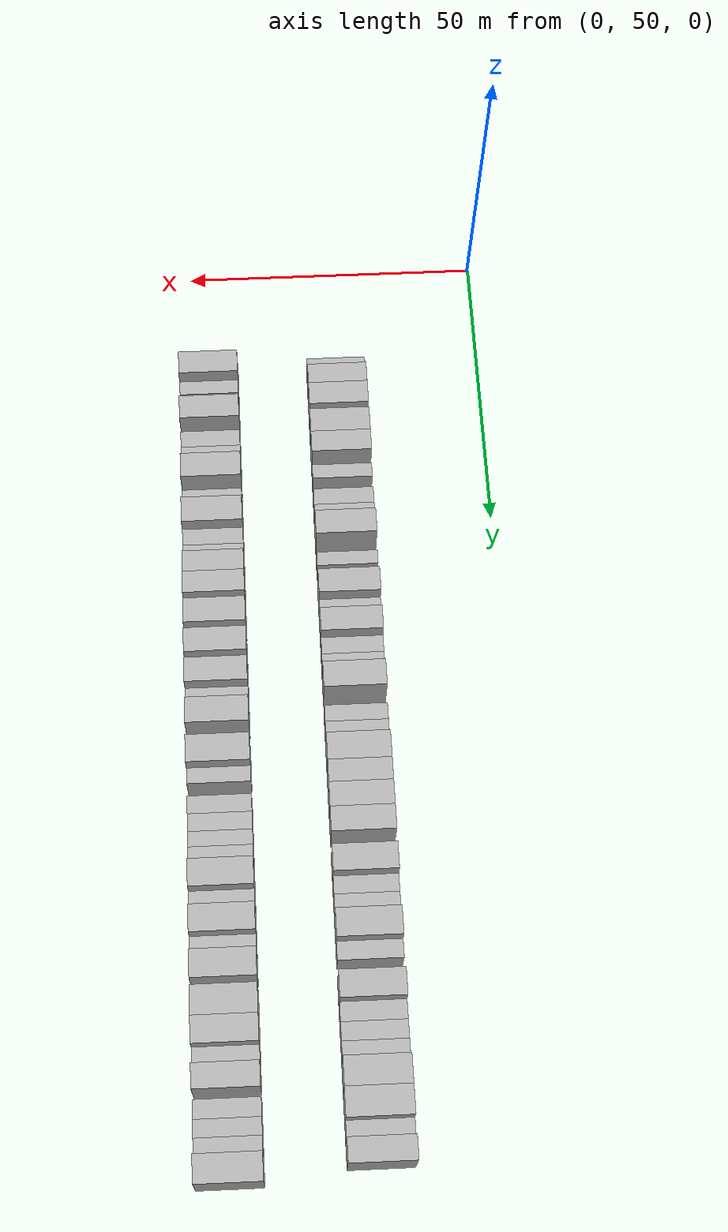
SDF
<sdf version="1.6">
 <world name="default">
  <model name="building_71">
   <static>1</static>
   <pose>25.0000 72.4095 0 0.000000 0.000000 0.000000</pose>
   <link name="link">
    <pose>0 0 3.00 0 0 0</pose>
    <collision name="collision"><geometry><box><size>10.0000 2.9262 6.0000</size></box></geometry></collision>
    <visual name="visual">
     <cast_shadows>0</cast_shadows>
     <geometry><box><size>10.0000 2.9262 6.0000</size></box></geometry>
     <material>
      <script>
       <uri>model://HANNAS_wall/materials/scripts</uri>
       <uri>model://HANNAS_wall/materials/textures</uri>
       <name>vrc/HANNAS_wall</name>
      </script>
     </material>
    </visual>
   </link>
  </model>
  <model name="building_72">
   <static>1</static>
   <pose>25.0000 75.6916 0 0.000000 0.000000 0.000000</pose>
   <link name="link">
    <pose>0 0 4.50 0 0 0</pose>
    <collision name="collision"><geometry><box><size>10.0000 3.6381 9.0000</size></box></geometry></collision>
    <visual name="visual">
     <cast_shadows>0</cast_shadows>
     <geometry><box><size>10.0000 3.6381 9.0000</size></box></geometry>
     <material>
      <script>
       <uri>model://HANNAS_wall/materials/scripts</uri>
       <uri>model://HANNAS_wall/materials/textures</uri>
       <name>vrc/HANNAS_wall</name>
      </script>
     </material>
    </visual>
   </link>
  </model>
  <model name="building_73">
   <static>1</static>
   <pose>25.0000 79.5745 0 0.000000 0.000000 0.000000</pose>
   <link name="link">
    <pose>0 0 4.50 0 0 0</pose>
    <collision name="collision"><geometry><box><size>10.0000 4.1278 9.0000</size></box></geometry></collision>
    <visual name="visual">
     <cast_shadows>0</cast_shadows>
     <geometry><box><size>10.0000 4.1278 9.0000</size></box></geometry>
     <material>
      <script>
       <uri>model://HANNAS_wall/materials/scripts</uri>
       <uri>model://HANNAS_wall/materials/textures</uri>
       <name>vrc/HANNAS_wall</name>
      </script>
     </material>
    </visual>
   </link>
  </model>
  <model name="building_74">
   <static>1</static>
   <pose>25.0000 84.8035 0 0.000000 0.000000 0.000000</pose>
   <link name="link">
    <pose>0 0 4.50 0 0 0</pose>
    <collision name="collision"><geometry><box><size>10.0000 4.3300 9.0000</size></box></geometry></collision>
    <visual name="visual">
     <cast_shadows>0</cast_shadows>
     <geometry><box><size>10.0000 4.3300 9.0000</size></box></geometry>
     <material>
      <script>
       <uri>model://HANNAS_wall/materials/scripts</uri>
       <uri>model://HANNAS_wall/materials/textures</uri>
       <name>vrc/HANNAS_wall</name>
      </script>
     </material>
    </visual>
   </link>
  </model>
  <model name="building_75">
   <static>1</static>
   <pose>25.0000 88.8725 0 0.000000 0.000000 0.000000</pose>
   <link name="link">
    <pose>0 0 4.50 0 0 0</pose>
    <collision name="collision"><geometry><box><size>10.0000 3.8081 9.0000</size></box></geometry></collision>
    <visual name="visual">
     <cast_shadows>0</cast_shadows>
     <geometry><box><size>10.0000 3.8081 9.0000</size></box></geometry>
     <material>
      <script>
       <uri>model://HANNAS_wall/materials/scripts</uri>
       <uri>model://HANNAS_wall/materials/textures</uri>
       <name>vrc/HANNAS_wall</name>
      </script>
     </material>
    </visual>
   </link>
  </model>
  <model name="building_76">
   <static>1</static>
   <pose>25.0000 93.0539 0 0.000000 0.000000 0.000000</pose>
   <link name="link">
    <pose>0 0 3.00 0 0 0</pose>
    <collision name="collision"><geometry><box><size>10.0000 2.5547 6.0000</size></box></geometry></collision>
    <visual name="visual">
     <cast_shadows>0</cast_shadows>
     <geometry><box><size>10.0000 2.5547 6.0000</size></box></geometry>
     <material>
      <script>
       <uri>model://HANNAS_wall/materials/scripts</uri>
       <uri>model://HANNAS_wall/materials/textures</uri>
       <name>vrc/HANNAS_wall</name>
      </script>
     </material>
    </visual>
   </link>
  </model>
  <model name="building_77">
   <static>1</static>
   <pose>25.0000 97.7965 0 0.000000 0.000000 0.000000</pose>
   <link name="link">
    <pose>0 0 3.00 0 0 0</pose>
    <collision name="collision"><geometry><box><size>10.0000 2.9305 6.0000</size></box></geometry></collision>
    <visual name="visual">
     <cast_shadows>0</cast_shadows>
     <geometry><box><size>10.0000 2.9305 6.0000</size></box></geometry>
     <material>
      <script>
       <uri>model://HANNAS_wall/materials/scripts</uri>
       <uri>model://HANNAS_wall/materials/textures</uri>
       <name>vrc/HANNAS_wall</name>
      </script>
     </material>
    </visual>
   </link>
  </model>
  <model name="building_78">
   <static>1</static>
   <pose>25.0000 100.5645 0 0.000000 0.000000 0.000000</pose>
   <link name="link">
    <pose>0 0 3.00 0 0 0</pose>
    <collision name="collision"><geometry><box><size>10.0000 2.6054 6.0000</size></box></geometry></collision>
    <visual name="visual">
     <cast_shadows>0</cast_shadows>
     <geometry><box><size>10.0000 2.6054 6.0000</size></box></geometry>
     <material>
      <script>
       <uri>model://HANNAS_wall/materials/scripts</uri>
       <uri>model://HANNAS_wall/materials/textures</uri>
       <name>vrc/HANNAS_wall</name>
      </script>
     </material>
    </visual>
   </link>
  </model>
  <model name="building_79">
   <static>1</static>
   <pose>25.0000 103.9760 0 0.000000 0.000000 0.000000</pose>
   <link name="link">
    <pose>0 0 4.50 0 0 0</pose>
    <collision name="collision"><geometry><box><size>10.0000 4.2176 9.0000</size></box></geometry></collision>
    <visual name="visual">
     <cast_shadows>0</cast_shadows>
     <geometry><box><size>10.0000 4.2176 9.0000</size></box></geometry>
     <material>
      <script>
       <uri>model://HANNAS_wall/materials/scripts</uri>
       <uri>model://HANNAS_wall/materials/textures</uri>
       <name>vrc/HANNAS_wall</name>
      </script>
     </material>
    </visual>
   </link>
  </model>
  <model name="building_80">
   <static>1</static>
   <pose>25.0000 109.2987 0 0.000000 0.000000 0.000000</pose>
   <link name="link">
    <pose>0 0 3.00 0 0 0</pose>
    <collision name="collision"><geometry><box><size>10.0000 2.4277 6.0000</size></box></geometry></collision>
    <visual name="visual">
     <cast_shadows>0</cast_shadows>
     <geometry><box><size>10.0000 2.4277 6.0000</size></box></geometry>
     <material>
      <script>
       <uri>model://HANNAS_wall/materials/scripts</uri>
       <uri>model://HANNAS_wall/materials/textures</uri>
       <name>vrc/HANNAS_wall</name>
      </script>
     </material>
    </visual>
   </link>
  </model>
  <model name="building_81">
   <static>1</static>
   <pose>25.0000 114.5746 0 0.000000 0.000000 0.000000</pose>
   <link name="link">
    <pose>0 0 4.50 0 0 0</pose>
    <collision name="collision"><geometry><box><size>10.0000 4.1242 9.0000</size></box></geometry></collision>
    <visual name="visual">
     <cast_shadows>0</cast_shadows>
     <geometry><box><size>10.0000 4.1242 9.0000</size></box></geometry>
     <material>
      <script>
       <uri>model://HANNAS_wall/materials/scripts</uri>
       <uri>model://HANNAS_wall/materials/textures</uri>
       <name>vrc/HANNAS_wall</name>
      </script>
     </material>
    </visual>
   </link>
  </model>
  <model name="building_82">
   <static>1</static>
   <pose>25.0000 117.9998 0 0.000000 0.000000 0.000000</pose>
   <link name="link">
    <pose>0 0 3.00 0 0 0</pose>
    <collision name="collision"><geometry><box><size>10.0000 2.7262 6.0000</size></box></geometry></collision>
    <visual name="visual">
     <cast_shadows>0</cast_shadows>
     <geometry><box><size>10.0000 2.7262 6.0000</size></box></geometry>
     <material>
      <script>
       <uri>model://HANNAS_wall/materials/scripts</uri>
       <uri>model://HANNAS_wall/materials/textures</uri>
       <name>vrc/HANNAS_wall</name>
      </script>
     </material>
    </visual>
   </link>
  </model>
  <model name="building_83">
   <static>1</static>
   <pose>25.0000 121.3579 0 0.000000 0.000000 0.000000</pose>
   <link name="link">
    <pose>0 0 4.50 0 0 0</pose>
    <collision name="collision"><geometry><box><size>10.0000 3.9899 9.0000</size></box></geometry></collision>
    <visual name="visual">
     <cast_shadows>0</cast_shadows>
     <geometry><box><size>10.0000 3.9899 9.0000</size></box></geometry>
     <material>
      <script>
       <uri>model://HANNAS_wall/materials/scripts</uri>
       <uri>model://HANNAS_wall/materials/textures</uri>
       <name>vrc/HANNAS_wall</name>
      </script>
     </material>
    </visual>
   </link>
  </model>
  <model name="building_84">
   <static>1</static>
   <pose>25.0000 124.7776 0 0.000000 0.000000 0.000000</pose>
   <link name="link">
    <pose>0 0 3.00 0 0 0</pose>
    <collision name="collision"><geometry><box><size>10.0000 2.8494 6.0000</size></box></geometry></collision>
    <visual name="visual">
     <cast_shadows>0</cast_shadows>
     <geometry><box><size>10.0000 2.8494 6.0000</size></box></geometry>
     <material>
      <script>
       <uri>model://HANNAS_wall/materials/scripts</uri>
       <uri>model://HANNAS_wall/materials/textures</uri>
       <name>vrc/HANNAS_wall</name>
      </script>
     </material>
    </visual>
   </link>
  </model>
  <model name="building_85">
   <static>1</static>
   <pose>25.0000 127.4439 0 0.000000 0.000000 0.000000</pose>
   <link name="link">
    <pose>0 0 3.00 0 0 0</pose>
    <collision name="collision"><geometry><box><size>10.0000 2.4832 6.0000</size></box></geometry></collision>
    <visual name="visual">
     <cast_shadows>0</cast_shadows>
     <geometry><box><size>10.0000 2.4832 6.0000</size></box></geometry>
     <material>
      <script>
       <uri>model://HANNAS_wall/materials/scripts</uri>
       <uri>model://HANNAS_wall/materials/textures</uri>
       <name>vrc/HANNAS_wall</name>
      </script>
     </material>
    </visual>
   </link>
  </model>
  <model name="building_86">
   <static>1</static>
   <pose>25.0000 130.8366 0 0.000000 0.000000 0.000000</pose>
   <link name="link">
    <pose>0 0 4.50 0 0 0</pose>
    <collision name="collision"><geometry><box><size>10.0000 4.3023 9.0000</size></box></geometry></collision>
    <visual name="visual">
     <cast_shadows>0</cast_shadows>
     <geometry><box><size>10.0000 4.3023 9.0000</size></box></geometry>
     <material>
      <script>
       <uri>model://HANNAS_wall/materials/scripts</uri>
       <uri>model://HANNAS_wall/materials/textures</uri>
       <name>vrc/HANNAS_wall</name>
      </script>
     </material>
    </visual>
   </link>
  </model>
  <model name="building_87">
   <static>1</static>
   <pose>25.0000 136.3557 0 0.000000 0.000000 0.000000</pose>
   <link name="link">
    <pose>0 0 3.00 0 0 0</pose>
    <collision name="collision"><geometry><box><size>10.0000 2.7359 6.0000</size></box></geometry></collision>
    <visual name="visual">
     <cast_shadows>0</cast_shadows>
     <geometry><box><size>10.0000 2.7359 6.0000</size></box></geometry>
     <material>
      <script>
       <uri>model://HANNAS_wall/materials/scripts</uri>
       <uri>model://HANNAS_wall/materials/textures</uri>
       <name>vrc/HANNAS_wall</name>
      </script>
     </material>
    </visual>
   </link>
  </model>
  <model name="building_88">
   <static>1</static>
   <pose>25.0000 139.1639 0 0.000000 0.000000 0.000000</pose>
   <link name="link">
    <pose>0 0 3.00 0 0 0</pose>
    <collision name="collision"><geometry><box><size>10.0000 2.8805 6.0000</size></box></geometry></collision>
    <visual name="visual">
     <cast_shadows>0</cast_shadows>
     <geometry><box><size>10.0000 2.8805 6.0000</size></box></geometry>
     <material>
      <script>
       <uri>model://HANNAS_wall/materials/scripts</uri>
       <uri>model://HANNAS_wall/materials/textures</uri>
       <name>vrc/HANNAS_wall</name>
      </script>
     </material>
    </visual>
   </link>
  </model>
  <model name="building_89">
   <static>1</static>
   <pose>25.0000 142.8288 0 0.000000 0.000000 0.000000</pose>
   <link name="link">
    <pose>0 0 4.50 0 0 0</pose>
    <collision name="collision"><geometry><box><size>10.0000 4.4494 9.0000</size></box></geometry></collision>
    <visual name="visual">
     <cast_shadows>0</cast_shadows>
     <geometry><box><size>10.0000 4.4494 9.0000</size></box></geometry>
     <material>
      <script>
       <uri>model://HANNAS_wall/materials/scripts</uri>
       <uri>model://HANNAS_wall/materials/textures</uri>
       <name>vrc/HANNAS_wall</name>
      </script>
     </material>
    </visual>
   </link>
  </model>
  <model name="building_90">
   <static>1</static>
   <pose>25.0000 146.8652 0 0.000000 0.000000 0.000000</pose>
   <link name="link">
    <pose>0 0 4.50 0 0 0</pose>
    <collision name="collision"><geometry><box><size>10.0000 3.6233 9.0000</size></box></geometry></collision>
    <visual name="visual">
     <cast_shadows>0</cast_shadows>
     <geometry><box><size>10.0000 3.6233 9.0000</size></box></geometry>
     <material>
      <script>
       <uri>model://HANNAS_wall/materials/scripts</uri>
       <uri>model://HANNAS_wall/materials/textures</uri>
       <name>vrc/HANNAS_wall</name>
      </script>
     </material>
    </visual>
   </link>
  </model>
  <model name="building_91">
   <static>1</static>
   <pose>25.0000 150.6443 0 0.000000 0.000000 0.000000</pose>
   <link name="link">
    <pose>0 0 4.50 0 0 0</pose>
    <collision name="collision"><geometry><box><size>10.0000 3.9351 9.0000</size></box></geometry></collision>
    <visual name="visual">
     <cast_shadows>0</cast_shadows>
     <geometry><box><size>10.0000 3.9351 9.0000</size></box></geometry>
     <material>
      <script>
       <uri>model://HANNAS_wall/materials/scripts</uri>
       <uri>model://HANNAS_wall/materials/textures</uri>
       <name>vrc/HANNAS_wall</name>
      </script>
     </material>
    </visual>
   </link>
  </model>
  <model name="building_92">
   <static>1</static>
   <pose>25.0000 154.5795 0 0.000000 0.000000 0.000000</pose>
   <link name="link">
    <pose>0 0 4.50 0 0 0</pose>
    <collision name="collision"><geometry><box><size>10.0000 3.9353 9.0000</size></box></geometry></collision>
    <visual name="visual">
     <cast_shadows>0</cast_shadows>
     <geometry><box><size>10.0000 3.9353 9.0000</size></box></geometry>
     <material>
      <script>
       <uri>model://HANNAS_wall/materials/scripts</uri>
       <uri>model://HANNAS_wall/materials/textures</uri>
       <name>vrc/HANNAS_wall</name>
      </script>
     </material>
    </visual>
   </link>
  </model>
  <model name="building_93">
   <static>1</static>
   <pose>25.0000 160.6480 0 0.000000 0.000000 0.000000</pose>
   <link name="link">
    <pose>0 0 4.50 0 0 0</pose>
    <collision name="collision"><geometry><box><size>10.0000 4.2016 9.0000</size></box></geometry></collision>
    <visual name="visual">
     <cast_shadows>0</cast_shadows>
     <geometry><box><size>10.0000 4.2016 9.0000</size></box></geometry>
     <material>
      <script>
       <uri>model://HANNAS_wall/materials/scripts</uri>
       <uri>model://HANNAS_wall/materials/textures</uri>
       <name>vrc/HANNAS_wall</name>
      </script>
     </material>
    </visual>
   </link>
  </model>
  <model name="building_94">
   <static>1</static>
   <pose>25.0000 164.1488 0 0.000000 0.000000 0.000000</pose>
   <link name="link">
    <pose>0 0 3.00 0 0 0</pose>
    <collision name="collision"><geometry><box><size>10.0000 2.8002 6.0000</size></box></geometry></collision>
    <visual name="visual">
     <cast_shadows>0</cast_shadows>
     <geometry><box><size>10.0000 2.8002 6.0000</size></box></geometry>
     <material>
      <script>
       <uri>model://HANNAS_wall/materials/scripts</uri>
       <uri>model://HANNAS_wall/materials/textures</uri>
       <name>vrc/HANNAS_wall</name>
      </script>
     </material>
    </visual>
   </link>
  </model>
  <model name="building_95">
   <static>1</static>
   <pose>25.0000 166.9760 0 0.000000 0.000000 0.000000</pose>
   <link name="link">
    <pose>0 0 3.00 0 0 0</pose>
    <collision name="collision"><geometry><box><size>10.0000 2.8540 6.0000</size></box></geometry></collision>
    <visual name="visual">
     <cast_shadows>0</cast_shadows>
     <geometry><box><size>10.0000 2.8540 6.0000</size></box></geometry>
     <material>
      <script>
       <uri>model://HANNAS_wall/materials/scripts</uri>
       <uri>model://HANNAS_wall/materials/textures</uri>
       <name>vrc/HANNAS_wall</name>
      </script>
     </material>
    </visual>
   </link>
  </model>
  <model name="building_96">
   <static>1</static>
   <pose>25.0000 170.5918 0 0.000000 0.000000 0.000000</pose>
   <link name="link">
    <pose>0 0 4.50 0 0 0</pose>
    <collision name="collision"><geometry><box><size>10.0000 4.3777 9.0000</size></box></geometry></collision>
    <visual name="visual">
     <cast_shadows>0</cast_shadows>
     <geometry><box><size>10.0000 4.3777 9.0000</size></box></geometry>
     <material>
      <script>
       <uri>model://HANNAS_wall/materials/scripts</uri>
       <uri>model://HANNAS_wall/materials/textures</uri>
       <name>vrc/HANNAS_wall</name>
      </script>
     </material>
    </visual>
   </link>
  </model>
  <model name="building_97">
   <static>1</static>
   <pose>25.0000 174.2160 0 0.000000 0.000000 0.000000</pose>
   <link name="link">
    <pose>0 0 3.00 0 0 0</pose>
    <collision name="collision"><geometry><box><size>10.0000 2.8707 6.0000</size></box></geometry></collision>
    <visual name="visual">
     <cast_shadows>0</cast_shadows>
     <geometry><box><size>10.0000 2.8707 6.0000</size></box></geometry>
     <material>
      <script>
       <uri>model://HANNAS_wall/materials/scripts</uri>
       <uri>model://HANNAS_wall/materials/textures</uri>
       <name>vrc/HANNAS_wall</name>
      </script>
     </material>
    </visual>
   </link>
  </model>
  <model name="building_98">
   <static>1</static>
   <pose>25.0000 179.7209 0 0.000000 0.000000 0.000000</pose>
   <link name="link">
    <pose>0 0 4.50 0 0 0</pose>
    <collision name="collision"><geometry><box><size>10.0000 4.1390 9.0000</size></box></geometry></collision>
    <visual name="visual">
     <cast_shadows>0</cast_shadows>
     <geometry><box><size>10.0000 4.1390 9.0000</size></box></geometry>
     <material>
      <script>
       <uri>model://HANNAS_wall/materials/scripts</uri>
       <uri>model://HANNAS_wall/materials/textures</uri>
       <name>vrc/HANNAS_wall</name>
      </script>
     </material>
    </visual>
   </link>
  </model>
  <model name="building_99">
   <static>1</static>
   <pose>25.0000 183.2602 0 0.000000 0.000000 0.000000</pose>
   <link name="link">
    <pose>0 0 3.00 0 0 0</pose>
    <collision name="collision"><geometry><box><size>10.0000 2.9398 6.0000</size></box></geometry></collision>
    <visual name="visual">
     <cast_shadows>0</cast_shadows>
     <geometry><box><size>10.0000 2.9398 6.0000</size></box></geometry>
     <material>
      <script>
       <uri>model://HANNAS_wall/materials/scripts</uri>
       <uri>model://HANNAS_wall/materials/textures</uri>
       <name>vrc/HANNAS_wall</name>
      </script>
     </material>
    </visual>
   </link>
  </model>
  <model name="building_100">
   <static>1</static>
   <pose>25.0000 186.1321 0 0.000000 0.000000 0.000000</pose>
   <link name="link">
    <pose>0 0 3.00 0 0 0</pose>
    <collision name="collision"><geometry><box><size>10.0000 2.8039 6.0000</size></box></geometry></collision>
    <visual name="visual">
     <cast_shadows>0</cast_shadows>
     <geometry><box><size>10.0000 2.8039 6.0000</size></box></geometry>
     <material>
      <script>
       <uri>model://HANNAS_wall/materials/scripts</uri>
       <uri>model://HANNAS_wall/materials/textures</uri>
       <name>vrc/HANNAS_wall</name>
      </script>
     </material>
    </visual>
   </link>
  </model>
  <model name="building_101">
   <static>1</static>
   <pose>25.0000 188.8167 0 0.000000 0.000000 0.000000</pose>
   <link name="link">
    <pose>0 0 3.00 0 0 0</pose>
    <collision name="collision"><geometry><box><size>10.0000 2.5652 6.0000</size></box></geometry></collision>
    <visual name="visual">
     <cast_shadows>0</cast_shadows>
     <geometry><box><size>10.0000 2.5652 6.0000</size></box></geometry>
     <material>
      <script>
       <uri>model://HANNAS_wall/materials/scripts</uri>
       <uri>model://HANNAS_wall/materials/textures</uri>
       <name>vrc/HANNAS_wall</name>
      </script>
     </material>
    </visual>
   </link>
  </model>
  <model name="building_102">
   <static>1</static>
   <pose>25.0000 192.2712 0 0.000000 0.000000 0.000000</pose>
   <link name="link">
    <pose>0 0 4.50 0 0 0</pose>
    <collision name="collision"><geometry><box><size>10.0000 4.3439 9.0000</size></box></geometry></collision>
    <visual name="visual">
     <cast_shadows>0</cast_shadows>
     <geometry><box><size>10.0000 4.3439 9.0000</size></box></geometry>
     <material>
      <script>
       <uri>model://HANNAS_wall/materials/scripts</uri>
       <uri>model://HANNAS_wall/materials/textures</uri>
       <name>vrc/HANNAS_wall</name>
      </script>
     </material>
    </visual>
   </link>
  </model>
  <model name="building_103">
   <static>1</static>
   <pose>25.0000 196.6186 0 0.000000 0.000000 0.000000</pose>
   <link name="link">
    <pose>0 0 4.50 0 0 0</pose>
    <collision name="collision"><geometry><box><size>10.0000 4.3509 9.0000</size></box></geometry></collision>
    <visual name="visual">
     <cast_shadows>0</cast_shadows>
     <geometry><box><size>10.0000 4.3509 9.0000</size></box></geometry>
     <material>
      <script>
       <uri>model://HANNAS_wall/materials/scripts</uri>
       <uri>model://HANNAS_wall/materials/textures</uri>
       <name>vrc/HANNAS_wall</name>
      </script>
     </material>
    </visual>
   </link>
  </model>
  <model name="building_104">
   <static>1</static>
   <pose>25.0000 200.1310 0 0.000000 0.000000 0.000000</pose>
   <link name="link">
    <pose>0 0 3.00 0 0 0</pose>
    <collision name="collision"><geometry><box><size>10.0000 2.6739 6.0000</size></box></geometry></collision>
    <visual name="visual">
     <cast_shadows>0</cast_shadows>
     <geometry><box><size>10.0000 2.6739 6.0000</size></box></geometry>
     <material>
      <script>
       <uri>model://HANNAS_wall/materials/scripts</uri>
       <uri>model://HANNAS_wall/materials/textures</uri>
       <name>vrc/HANNAS_wall</name>
      </script>
     </material>
    </visual>
   </link>
  </model>
  <model name="building_105">
   <static>1</static>
   <pose>25.0000 203.2763 0 0.000000 0.000000 0.000000</pose>
   <link name="link">
    <pose>0 0 4.50 0 0 0</pose>
    <collision name="collision"><geometry><box><size>10.0000 3.6168 9.0000</size></box></geometry></collision>
    <visual name="visual">
     <cast_shadows>0</cast_shadows>
     <geometry><box><size>10.0000 3.6168 9.0000</size></box></geometry>
     <material>
      <script>
       <uri>model://HANNAS_wall/materials/scripts</uri>
       <uri>model://HANNAS_wall/materials/textures</uri>
       <name>vrc/HANNAS_wall</name>
      </script>
     </material>
    </visual>
   </link>
  </model>
  <model name="building_178">
   <static>1</static>
   <pose>47.0000 72.5475 0 0.000000 0.000000 0.000000</pose>
   <link name="link">
    <pose>0 0 4.50 0 0 0</pose>
    <collision name="collision"><geometry><box><size>10.0000 4.1582 9.0000</size></box></geometry></collision>
    <visual name="visual">
     <cast_shadows>0</cast_shadows>
     <geometry><box><size>10.0000 4.1582 9.0000</size></box></geometry>
     <material>
      <script>
       <uri>model://HANNAS_wall/materials/scripts</uri>
       <uri>model://HANNAS_wall/materials/textures</uri>
       <name>vrc/HANNAS_wall</name>
      </script>
     </material>
    </visual>
   </link>
  </model>
  <model name="building_179">
   <static>1</static>
   <pose>47.0000 75.9032 0 0.000000 0.000000 0.000000</pose>
   <link name="link">
    <pose>0 0 3.00 0 0 0</pose>
    <collision name="collision"><geometry><box><size>10.0000 2.5532 6.0000</size></box></geometry></collision>
    <visual name="visual">
     <cast_shadows>0</cast_shadows>
     <geometry><box><size>10.0000 2.5532 6.0000</size></box></geometry>
     <material>
      <script>
       <uri>model://HANNAS_wall/materials/scripts</uri>
       <uri>model://HANNAS_wall/materials/textures</uri>
       <name>vrc/HANNAS_wall</name>
      </script>
     </material>
    </visual>
   </link>
  </model>
  <model name="building_180">
   <static>1</static>
   <pose>47.0000 81.3061 0 0.000000 0.000000 0.000000</pose>
   <link name="link">
    <pose>0 0 4.50 0 0 0</pose>
    <collision name="collision"><geometry><box><size>10.0000 4.2527 9.0000</size></box></geometry></collision>
    <visual name="visual">
     <cast_shadows>0</cast_shadows>
     <geometry><box><size>10.0000 4.2527 9.0000</size></box></geometry>
     <material>
      <script>
       <uri>model://HANNAS_wall/materials/scripts</uri>
       <uri>model://HANNAS_wall/materials/textures</uri>
       <name>vrc/HANNAS_wall</name>
      </script>
     </material>
    </visual>
   </link>
  </model>
  <model name="building_181">
   <static>1</static>
   <pose>47.0000 85.9290 0 0.000000 0.000000 0.000000</pose>
   <link name="link">
    <pose>0 0 3.00 0 0 0</pose>
    <collision name="collision"><geometry><box><size>10.0000 2.9931 6.0000</size></box></geometry></collision>
    <visual name="visual">
     <cast_shadows>0</cast_shadows>
     <geometry><box><size>10.0000 2.9931 6.0000</size></box></geometry>
     <material>
      <script>
       <uri>model://HANNAS_wall/materials/scripts</uri>
       <uri>model://HANNAS_wall/materials/textures</uri>
       <name>vrc/HANNAS_wall</name>
      </script>
     </material>
    </visual>
   </link>
  </model>
  <model name="building_182">
   <static>1</static>
   <pose>47.0000 88.8432 0 0.000000 0.000000 0.000000</pose>
   <link name="link">
    <pose>0 0 3.00 0 0 0</pose>
    <collision name="collision"><geometry><box><size>10.0000 2.8354 6.0000</size></box></geometry></collision>
    <visual name="visual">
     <cast_shadows>0</cast_shadows>
     <geometry><box><size>10.0000 2.8354 6.0000</size></box></geometry>
     <material>
      <script>
       <uri>model://HANNAS_wall/materials/scripts</uri>
       <uri>model://HANNAS_wall/materials/textures</uri>
       <name>vrc/HANNAS_wall</name>
      </script>
     </material>
    </visual>
   </link>
  </model>
  <model name="building_183">
   <static>1</static>
   <pose>47.0000 92.4474 0 0.000000 0.000000 0.000000</pose>
   <link name="link">
    <pose>0 0 4.50 0 0 0</pose>
    <collision name="collision"><geometry><box><size>10.0000 4.3729 9.0000</size></box></geometry></collision>
    <visual name="visual">
     <cast_shadows>0</cast_shadows>
     <geometry><box><size>10.0000 4.3729 9.0000</size></box></geometry>
     <material>
      <script>
       <uri>model://HANNAS_wall/materials/scripts</uri>
       <uri>model://HANNAS_wall/materials/textures</uri>
       <name>vrc/HANNAS_wall</name>
      </script>
     </material>
    </visual>
   </link>
  </model>
  <model name="building_184">
   <static>1</static>
   <pose>47.0000 97.0595 0 0.000000 0.000000 0.000000</pose>
   <link name="link">
    <pose>0 0 3.00 0 0 0</pose>
    <collision name="collision"><geometry><box><size>10.0000 2.8513 6.0000</size></box></geometry></collision>
    <visual name="visual">
     <cast_shadows>0</cast_shadows>
     <geometry><box><size>10.0000 2.8513 6.0000</size></box></geometry>
     <material>
      <script>
       <uri>model://HANNAS_wall/materials/scripts</uri>
       <uri>model://HANNAS_wall/materials/textures</uri>
       <name>vrc/HANNAS_wall</name>
      </script>
     </material>
    </visual>
   </link>
  </model>
  <model name="building_185">
   <static>1</static>
   <pose>47.0000 100.7229 0 0.000000 0.000000 0.000000</pose>
   <link name="link">
    <pose>0 0 4.50 0 0 0</pose>
    <collision name="collision"><geometry><box><size>10.0000 4.4754 9.0000</size></box></geometry></collision>
    <visual name="visual">
     <cast_shadows>0</cast_shadows>
     <geometry><box><size>10.0000 4.4754 9.0000</size></box></geometry>
     <material>
      <script>
       <uri>model://HANNAS_wall/materials/scripts</uri>
       <uri>model://HANNAS_wall/materials/textures</uri>
       <name>vrc/HANNAS_wall</name>
      </script>
     </material>
    </visual>
   </link>
  </model>
  <model name="building_186">
   <static>1</static>
   <pose>47.0000 104.4157 0 0.000000 0.000000 0.000000</pose>
   <link name="link">
    <pose>0 0 3.00 0 0 0</pose>
    <collision name="collision"><geometry><box><size>10.0000 2.9102 6.0000</size></box></geometry></collision>
    <visual name="visual">
     <cast_shadows>0</cast_shadows>
     <geometry><box><size>10.0000 2.9102 6.0000</size></box></geometry>
     <material>
      <script>
       <uri>model://HANNAS_wall/materials/scripts</uri>
       <uri>model://HANNAS_wall/materials/textures</uri>
       <name>vrc/HANNAS_wall</name>
      </script>
     </material>
    </visual>
   </link>
  </model>
  <model name="building_187">
   <static>1</static>
   <pose>47.0000 107.0974 0 0.000000 0.000000 0.000000</pose>
   <link name="link">
    <pose>0 0 3.00 0 0 0</pose>
    <collision name="collision"><geometry><box><size>10.0000 2.4532 6.0000</size></box></geometry></collision>
    <visual name="visual">
     <cast_shadows>0</cast_shadows>
     <geometry><box><size>10.0000 2.4532 6.0000</size></box></geometry>
     <material>
      <script>
       <uri>model://HANNAS_wall/materials/scripts</uri>
       <uri>model://HANNAS_wall/materials/textures</uri>
       <name>vrc/HANNAS_wall</name>
      </script>
     </material>
    </visual>
   </link>
  </model>
  <model name="building_188">
   <static>1</static>
   <pose>47.0000 110.1514 0 0.000000 0.000000 0.000000</pose>
   <link name="link">
    <pose>0 0 4.50 0 0 0</pose>
    <collision name="collision"><geometry><box><size>10.0000 3.6549 9.0000</size></box></geometry></collision>
    <visual name="visual">
     <cast_shadows>0</cast_shadows>
     <geometry><box><size>10.0000 3.6549 9.0000</size></box></geometry>
     <material>
      <script>
       <uri>model://HANNAS_wall/materials/scripts</uri>
       <uri>model://HANNAS_wall/materials/textures</uri>
       <name>vrc/HANNAS_wall</name>
      </script>
     </material>
    </visual>
   </link>
  </model>
  <model name="building_189">
   <static>1</static>
   <pose>47.0000 113.8648 0 0.000000 0.000000 0.000000</pose>
   <link name="link">
    <pose>0 0 4.50 0 0 0</pose>
    <collision name="collision"><geometry><box><size>10.0000 3.7719 9.0000</size></box></geometry></collision>
    <visual name="visual">
     <cast_shadows>0</cast_shadows>
     <geometry><box><size>10.0000 3.7719 9.0000</size></box></geometry>
     <material>
      <script>
       <uri>model://HANNAS_wall/materials/scripts</uri>
       <uri>model://HANNAS_wall/materials/textures</uri>
       <name>vrc/HANNAS_wall</name>
      </script>
     </material>
    </visual>
   </link>
  </model>
  <model name="building_190">
   <static>1</static>
   <pose>47.0000 118.8554 0 0.000000 0.000000 0.000000</pose>
   <link name="link">
    <pose>0 0 4.50 0 0 0</pose>
    <collision name="collision"><geometry><box><size>10.0000 4.2092 9.0000</size></box></geometry></collision>
    <visual name="visual">
     <cast_shadows>0</cast_shadows>
     <geometry><box><size>10.0000 4.2092 9.0000</size></box></geometry>
     <material>
      <script>
       <uri>model://HANNAS_wall/materials/scripts</uri>
       <uri>model://HANNAS_wall/materials/textures</uri>
       <name>vrc/HANNAS_wall</name>
      </script>
     </material>
    </visual>
   </link>
  </model>
  <model name="building_191">
   <static>1</static>
   <pose>47.0000 124.0169 0 0.000000 0.000000 0.000000</pose>
   <link name="link">
    <pose>0 0 4.50 0 0 0</pose>
    <collision name="collision"><geometry><box><size>10.0000 4.1139 9.0000</size></box></geometry></collision>
    <visual name="visual">
     <cast_shadows>0</cast_shadows>
     <geometry><box><size>10.0000 4.1139 9.0000</size></box></geometry>
     <material>
      <script>
       <uri>model://HANNAS_wall/materials/scripts</uri>
       <uri>model://HANNAS_wall/materials/textures</uri>
       <name>vrc/HANNAS_wall</name>
      </script>
     </material>
    </visual>
   </link>
  </model>
  <model name="building_192">
   <static>1</static>
   <pose>47.0000 129.1223 0 0.000000 0.000000 0.000000</pose>
   <link name="link">
    <pose>0 0 4.50 0 0 0</pose>
    <collision name="collision"><geometry><box><size>10.0000 4.0970 9.0000</size></box></geometry></collision>
    <visual name="visual">
     <cast_shadows>0</cast_shadows>
     <geometry><box><size>10.0000 4.0970 9.0000</size></box></geometry>
     <material>
      <script>
       <uri>model://HANNAS_wall/materials/scripts</uri>
       <uri>model://HANNAS_wall/materials/textures</uri>
       <name>vrc/HANNAS_wall</name>
      </script>
     </material>
    </visual>
   </link>
  </model>
  <model name="building_193">
   <static>1</static>
   <pose>47.0000 132.4856 0 0.000000 0.000000 0.000000</pose>
   <link name="link">
    <pose>0 0 3.00 0 0 0</pose>
    <collision name="collision"><geometry><box><size>10.0000 2.6296 6.0000</size></box></geometry></collision>
    <visual name="visual">
     <cast_shadows>0</cast_shadows>
     <geometry><box><size>10.0000 2.6296 6.0000</size></box></geometry>
     <material>
      <script>
       <uri>model://HANNAS_wall/materials/scripts</uri>
       <uri>model://HANNAS_wall/materials/textures</uri>
       <name>vrc/HANNAS_wall</name>
      </script>
     </material>
    </visual>
   </link>
  </model>
  <model name="building_194">
   <static>1</static>
   <pose>47.0000 135.9206 0 0.000000 0.000000 0.000000</pose>
   <link name="link">
    <pose>0 0 4.50 0 0 0</pose>
    <collision name="collision"><geometry><box><size>10.0000 4.2405 9.0000</size></box></geometry></collision>
    <visual name="visual">
     <cast_shadows>0</cast_shadows>
     <geometry><box><size>10.0000 4.2405 9.0000</size></box></geometry>
     <material>
      <script>
       <uri>model://HANNAS_wall/materials/scripts</uri>
       <uri>model://HANNAS_wall/materials/textures</uri>
       <name>vrc/HANNAS_wall</name>
      </script>
     </material>
    </visual>
   </link>
  </model>
  <model name="building_195">
   <static>1</static>
   <pose>47.0000 142.2796 0 0.000000 0.000000 0.000000</pose>
   <link name="link">
    <pose>0 0 4.50 0 0 0</pose>
    <collision name="collision"><geometry><box><size>10.0000 4.4774 9.0000</size></box></geometry></collision>
    <visual name="visual">
     <cast_shadows>0</cast_shadows>
     <geometry><box><size>10.0000 4.4774 9.0000</size></box></geometry>
     <material>
      <script>
       <uri>model://HANNAS_wall/materials/scripts</uri>
       <uri>model://HANNAS_wall/materials/textures</uri>
       <name>vrc/HANNAS_wall</name>
      </script>
     </material>
    </visual>
   </link>
  </model>
  <model name="building_196">
   <static>1</static>
   <pose>47.0000 145.7974 0 0.000000 0.000000 0.000000</pose>
   <link name="link">
    <pose>0 0 3.00 0 0 0</pose>
    <collision name="collision"><geometry><box><size>10.0000 2.5583 6.0000</size></box></geometry></collision>
    <visual name="visual">
     <cast_shadows>0</cast_shadows>
     <geometry><box><size>10.0000 2.5583 6.0000</size></box></geometry>
     <material>
      <script>
       <uri>model://HANNAS_wall/materials/scripts</uri>
       <uri>model://HANNAS_wall/materials/textures</uri>
       <name>vrc/HANNAS_wall</name>
      </script>
     </material>
    </visual>
   </link>
  </model>
  <model name="building_197">
   <static>1</static>
   <pose>47.0000 150.5109 0 0.000000 0.000000 0.000000</pose>
   <link name="link">
    <pose>0 0 3.00 0 0 0</pose>
    <collision name="collision"><geometry><box><size>10.0000 2.8687 6.0000</size></box></geometry></collision>
    <visual name="visual">
     <cast_shadows>0</cast_shadows>
     <geometry><box><size>10.0000 2.8687 6.0000</size></box></geometry>
     <material>
      <script>
       <uri>model://HANNAS_wall/materials/scripts</uri>
       <uri>model://HANNAS_wall/materials/textures</uri>
       <name>vrc/HANNAS_wall</name>
      </script>
     </material>
    </visual>
   </link>
  </model>
  <model name="building_198">
   <static>1</static>
   <pose>47.0000 153.3639 0 0.000000 0.000000 0.000000</pose>
   <link name="link">
    <pose>0 0 3.00 0 0 0</pose>
    <collision name="collision"><geometry><box><size>10.0000 2.8373 6.0000</size></box></geometry></collision>
    <visual name="visual">
     <cast_shadows>0</cast_shadows>
     <geometry><box><size>10.0000 2.8373 6.0000</size></box></geometry>
     <material>
      <script>
       <uri>model://HANNAS_wall/materials/scripts</uri>
       <uri>model://HANNAS_wall/materials/textures</uri>
       <name>vrc/HANNAS_wall</name>
      </script>
     </material>
    </visual>
   </link>
  </model>
  <model name="building_199">
   <static>1</static>
   <pose>47.0000 156.0045 0 0.000000 0.000000 0.000000</pose>
   <link name="link">
    <pose>0 0 3.00 0 0 0</pose>
    <collision name="collision"><geometry><box><size>10.0000 2.4439 6.0000</size></box></geometry></collision>
    <visual name="visual">
     <cast_shadows>0</cast_shadows>
     <geometry><box><size>10.0000 2.4439 6.0000</size></box></geometry>
     <material>
      <script>
       <uri>model://HANNAS_wall/materials/scripts</uri>
       <uri>model://HANNAS_wall/materials/textures</uri>
       <name>vrc/HANNAS_wall</name>
      </script>
     </material>
    </visual>
   </link>
  </model>
  <model name="building_200">
   <static>1</static>
   <pose>47.0000 158.5562 0 0.000000 0.000000 0.000000</pose>
   <link name="link">
    <pose>0 0 3.00 0 0 0</pose>
    <collision name="collision"><geometry><box><size>10.0000 2.6594 6.0000</size></box></geometry></collision>
    <visual name="visual">
     <cast_shadows>0</cast_shadows>
     <geometry><box><size>10.0000 2.6594 6.0000</size></box></geometry>
     <material>
      <script>
       <uri>model://HANNAS_wall/materials/scripts</uri>
       <uri>model://HANNAS_wall/materials/textures</uri>
       <name>vrc/HANNAS_wall</name>
      </script>
     </material>
    </visual>
   </link>
  </model>
  <model name="building_201">
   <static>1</static>
   <pose>47.0000 162.0296 0 0.000000 0.000000 0.000000</pose>
   <link name="link">
    <pose>0 0 4.50 0 0 0</pose>
    <collision name="collision"><geometry><box><size>10.0000 4.2873 9.0000</size></box></geometry></collision>
    <visual name="visual">
     <cast_shadows>0</cast_shadows>
     <geometry><box><size>10.0000 4.2873 9.0000</size></box></geometry>
     <material>
      <script>
       <uri>model://HANNAS_wall/materials/scripts</uri>
       <uri>model://HANNAS_wall/materials/textures</uri>
       <name>vrc/HANNAS_wall</name>
      </script>
     </material>
    </visual>
   </link>
  </model>
  <model name="building_202">
   <static>1</static>
   <pose>47.0000 165.5286 0 0.000000 0.000000 0.000000</pose>
   <link name="link">
    <pose>0 0 3.00 0 0 0</pose>
    <collision name="collision"><geometry><box><size>10.0000 2.7107 6.0000</size></box></geometry></collision>
    <visual name="visual">
     <cast_shadows>0</cast_shadows>
     <geometry><box><size>10.0000 2.7107 6.0000</size></box></geometry>
     <material>
      <script>
       <uri>model://HANNAS_wall/materials/scripts</uri>
       <uri>model://HANNAS_wall/materials/textures</uri>
       <name>vrc/HANNAS_wall</name>
      </script>
     </material>
    </visual>
   </link>
  </model>
  <model name="building_203">
   <static>1</static>
   <pose>47.0000 168.9895 0 0.000000 0.000000 0.000000</pose>
   <link name="link">
    <pose>0 0 4.50 0 0 0</pose>
    <collision name="collision"><geometry><box><size>10.0000 4.2110 9.0000</size></box></geometry></collision>
    <visual name="visual">
     <cast_shadows>0</cast_shadows>
     <geometry><box><size>10.0000 4.2110 9.0000</size></box></geometry>
     <material>
      <script>
       <uri>model://HANNAS_wall/materials/scripts</uri>
       <uri>model://HANNAS_wall/materials/textures</uri>
       <name>vrc/HANNAS_wall</name>
      </script>
     </material>
    </visual>
   </link>
  </model>
  <model name="building_204">
   <static>1</static>
   <pose>47.0000 172.3645 0 0.000000 0.000000 0.000000</pose>
   <link name="link">
    <pose>0 0 3.00 0 0 0</pose>
    <collision name="collision"><geometry><box><size>10.0000 2.5391 6.0000</size></box></geometry></collision>
    <visual name="visual">
     <cast_shadows>0</cast_shadows>
     <geometry><box><size>10.0000 2.5391 6.0000</size></box></geometry>
     <material>
      <script>
       <uri>model://HANNAS_wall/materials/scripts</uri>
       <uri>model://HANNAS_wall/materials/textures</uri>
       <name>vrc/HANNAS_wall</name>
      </script>
     </material>
    </visual>
   </link>
  </model>
  <model name="building_205">
   <static>1</static>
   <pose>47.0000 175.7745 0 0.000000 0.000000 0.000000</pose>
   <link name="link">
    <pose>0 0 4.50 0 0 0</pose>
    <collision name="collision"><geometry><box><size>10.0000 4.2810 9.0000</size></box></geometry></collision>
    <visual name="visual">
     <cast_shadows>0</cast_shadows>
     <geometry><box><size>10.0000 4.2810 9.0000</size></box></geometry>
     <material>
      <script>
       <uri>model://HANNAS_wall/materials/scripts</uri>
       <uri>model://HANNAS_wall/materials/textures</uri>
       <name>vrc/HANNAS_wall</name>
      </script>
     </material>
    </visual>
   </link>
  </model>
  <model name="building_206">
   <static>1</static>
   <pose>47.0000 181.1488 0 0.000000 0.000000 0.000000</pose>
   <link name="link">
    <pose>0 0 4.50 0 0 0</pose>
    <collision name="collision"><geometry><box><size>10.0000 4.4675 9.0000</size></box></geometry></collision>
    <visual name="visual">
     <cast_shadows>0</cast_shadows>
     <geometry><box><size>10.0000 4.4675 9.0000</size></box></geometry>
     <material>
      <script>
       <uri>model://HANNAS_wall/materials/scripts</uri>
       <uri>model://HANNAS_wall/materials/textures</uri>
       <name>vrc/HANNAS_wall</name>
      </script>
     </material>
    </visual>
   </link>
  </model>
  <model name="building_207">
   <static>1</static>
   <pose>47.0000 185.4214 0 0.000000 0.000000 0.000000</pose>
   <link name="link">
    <pose>0 0 4.50 0 0 0</pose>
    <collision name="collision"><geometry><box><size>10.0000 4.0779 9.0000</size></box></geometry></collision>
    <visual name="visual">
     <cast_shadows>0</cast_shadows>
     <geometry><box><size>10.0000 4.0779 9.0000</size></box></geometry>
     <material>
      <script>
       <uri>model://HANNAS_wall/materials/scripts</uri>
       <uri>model://HANNAS_wall/materials/textures</uri>
       <name>vrc/HANNAS_wall</name>
      </script>
     </material>
    </visual>
   </link>
  </model>
  <model name="building_208">
   <static>1</static>
   <pose>47.0000 188.8232 0 0.000000 0.000000 0.000000</pose>
   <link name="link">
    <pose>0 0 3.00 0 0 0</pose>
    <collision name="collision"><geometry><box><size>10.0000 2.7256 6.0000</size></box></geometry></collision>
    <visual name="visual">
     <cast_shadows>0</cast_shadows>
     <geometry><box><size>10.0000 2.7256 6.0000</size></box></geometry>
     <material>
      <script>
       <uri>model://HANNAS_wall/materials/scripts</uri>
       <uri>model://HANNAS_wall/materials/textures</uri>
       <name>vrc/HANNAS_wall</name>
      </script>
     </material>
    </visual>
   </link>
  </model>
  <model name="building_209">
   <static>1</static>
   <pose>47.0000 192.0501 0 0.000000 0.000000 0.000000</pose>
   <link name="link">
    <pose>0 0 4.50 0 0 0</pose>
    <collision name="collision"><geometry><box><size>10.0000 3.7283 9.0000</size></box></geometry></collision>
    <visual name="visual">
     <cast_shadows>0</cast_shadows>
     <geometry><box><size>10.0000 3.7283 9.0000</size></box></geometry>
     <material>
      <script>
       <uri>model://HANNAS_wall/materials/scripts</uri>
       <uri>model://HANNAS_wall/materials/textures</uri>
       <name>vrc/HANNAS_wall</name>
      </script>
     </material>
    </visual>
   </link>
  </model>
  <model name="building_210">
   <static>1</static>
   <pose>47.0000 196.3128 0 0.000000 0.000000 0.000000</pose>
   <link name="link">
    <pose>0 0 3.00 0 0 0</pose>
    <collision name="collision"><geometry><box><size>10.0000 2.7971 6.0000</size></box></geometry></collision>
    <visual name="visual">
     <cast_shadows>0</cast_shadows>
     <geometry><box><size>10.0000 2.7971 6.0000</size></box></geometry>
     <material>
      <script>
       <uri>model://HANNAS_wall/materials/scripts</uri>
       <uri>model://HANNAS_wall/materials/textures</uri>
       <name>vrc/HANNAS_wall</name>
      </script>
     </material>
    </visual>
   </link>
  </model>
  <model name="building_211">
   <static>1</static>
   <pose>47.0000 199.0093 0 0.000000 0.000000 0.000000</pose>
   <link name="link">
    <pose>0 0 3.00 0 0 0</pose>
    <collision name="collision"><geometry><box><size>10.0000 2.5961 6.0000</size></box></geometry></collision>
    <visual name="visual">
     <cast_shadows>0</cast_shadows>
     <geometry><box><size>10.0000 2.5961 6.0000</size></box></geometry>
     <material>
      <script>
       <uri>model://HANNAS_wall/materials/scripts</uri>
       <uri>model://HANNAS_wall/materials/textures</uri>
       <name>vrc/HANNAS_wall</name>
      </script>
     </material>
    </visual>
   </link>
  </model>
  <model name="building_212">
   <static>1</static>
   <pose>47.0000 201.5612 0 0.000000 0.000000 0.000000</pose>
   <link name="link">
    <pose>0 0 3.00 0 0 0</pose>
    <collision name="collision"><geometry><box><size>10.0000 2.5075 6.0000</size></box></geometry></collision>
    <visual name="visual">
     <cast_shadows>0</cast_shadows>
     <geometry><box><size>10.0000 2.5075 6.0000</size></box></geometry>
     <material>
      <script>
       <uri>model://HANNAS_wall/materials/scripts</uri>
       <uri>model://HANNAS_wall/materials/textures</uri>
       <name>vrc/HANNAS_wall</name>
      </script>
     </material>
    </visual>
   </link>
  </model>
  <model name="building_213">
   <static>1</static>
   <pose>47.0000 204.8918 0 0.000000 0.000000 0.000000</pose>
   <link name="link">
    <pose>0 0 4.50 0 0 0</pose>
    <collision name="collision"><geometry><box><size>10.0000 4.1538 9.0000</size></box></geometry></collision>
    <visual name="visual">
     <cast_shadows>0</cast_shadows>
     <geometry><box><size>10.0000 4.1538 9.0000</size></box></geometry>
     <material>
      <script>
       <uri>model://HANNAS_wall/materials/scripts</uri>
       <uri>model://HANNAS_wall/materials/textures</uri>
       <name>vrc/HANNAS_wall</name>
      </script>
     </material>
    </visual>
   </link>
  </model>
 </world>
</sdf>
